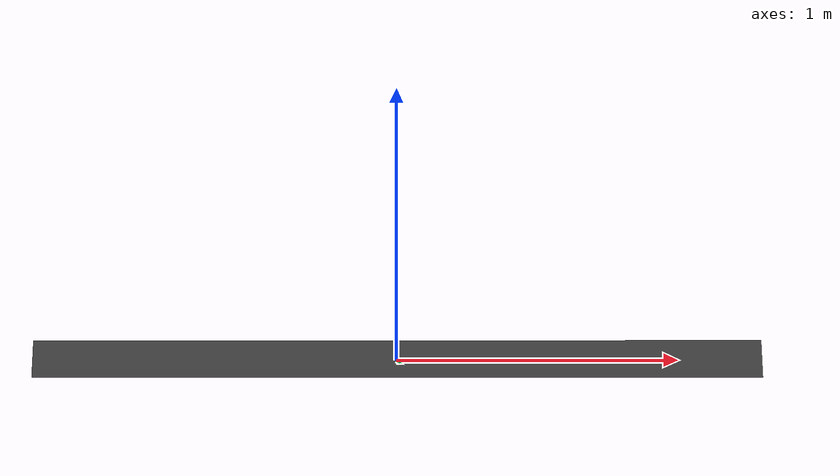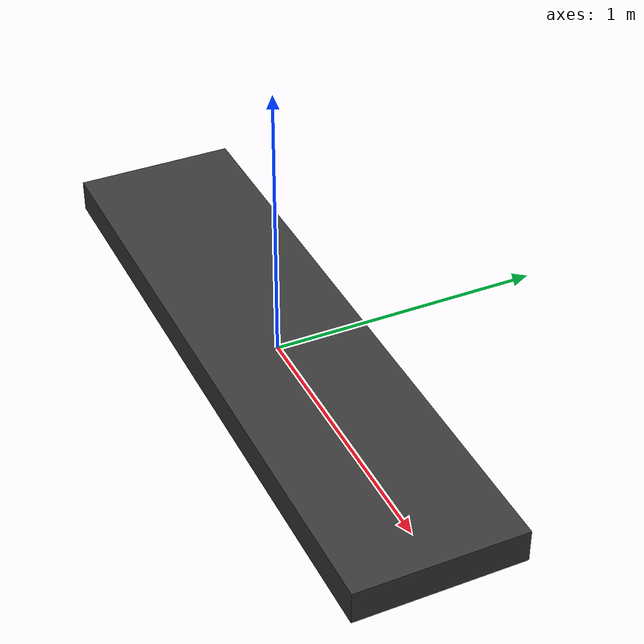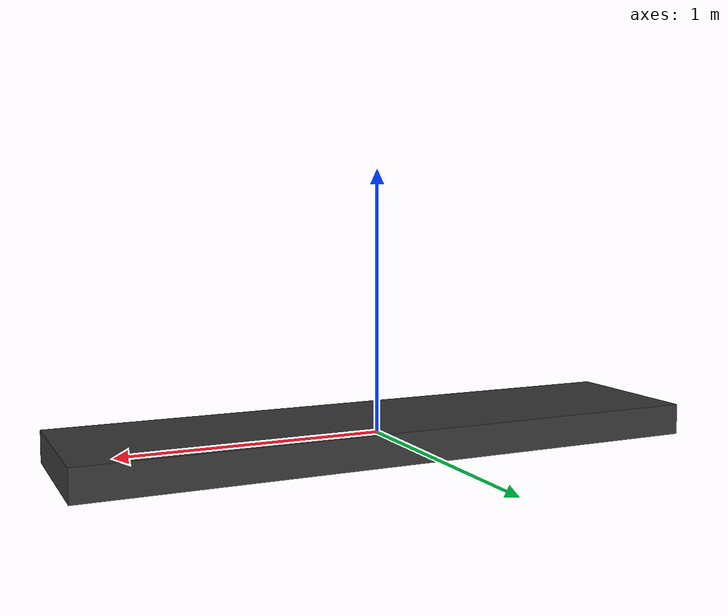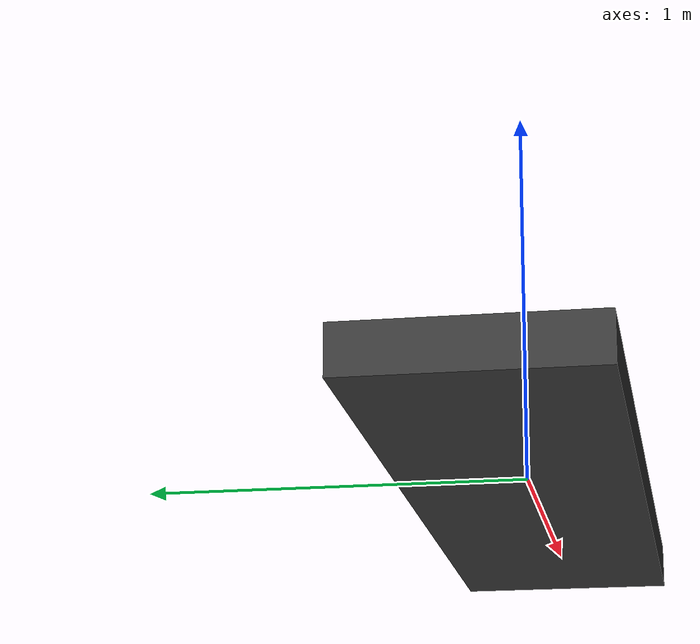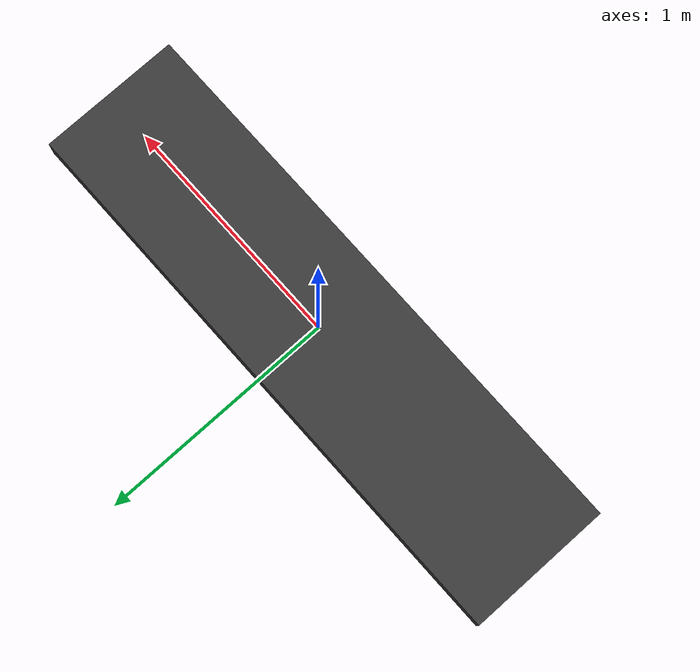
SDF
<sdf version="1.6">
  <model name="ws_conveyor_belt">
    <static>true</static>

    <link name="belt">
      <pose>0 0 0 0 0 0</pose>

      <collision name="collision">
        <geometry>
          <box>
            <size>2.4 0.6 0.12</size>
          </box>
        </geometry>
        <surface>
          <friction>
            <ode>
              <mu>100.0</mu>
              <mu2>100.0</mu2>
              <fdir1>1 0 0</fdir1>
              <slip1>0.0</slip1>
              <slip2>0.0</slip2>
            </ode>
          </friction>
          <bounce/>
          <contact>
            <ode>
              <kp>1000000.0</kp>
              <kd>100.0</kd>
              <max_vel>1.0</max_vel>
              <min_depth>0.001</min_depth>
            </ode>
          </contact>
        </surface>
      </collision>

      <visual name="visual">
        <geometry>
          <box>
            <size>2.4 0.6 0.12</size>
          </box>
        </geometry>
        <material>
          <ambient>0.15 0.15 0.15 1</ambient>
          <diffuse>0.22 0.22 0.22 1</diffuse>
          <specular>0.05 0.05 0.05 1</specular>
        </material>
      </visual>
    </link>

    <plugin name="conveyor_motion_plugin" filename="libconveyor_motion_plugin.so">
      <belt_center>0 0 0.12</belt_center>
      <belt_size>2.4 0.6 0.12</belt_size>
      <belt_speed>0.22</belt_speed>
      <top_margin>0.20</top_margin>
      <lateral_damping>3.0</lateral_damping>
    </plugin>
  </model>
</sdf>
